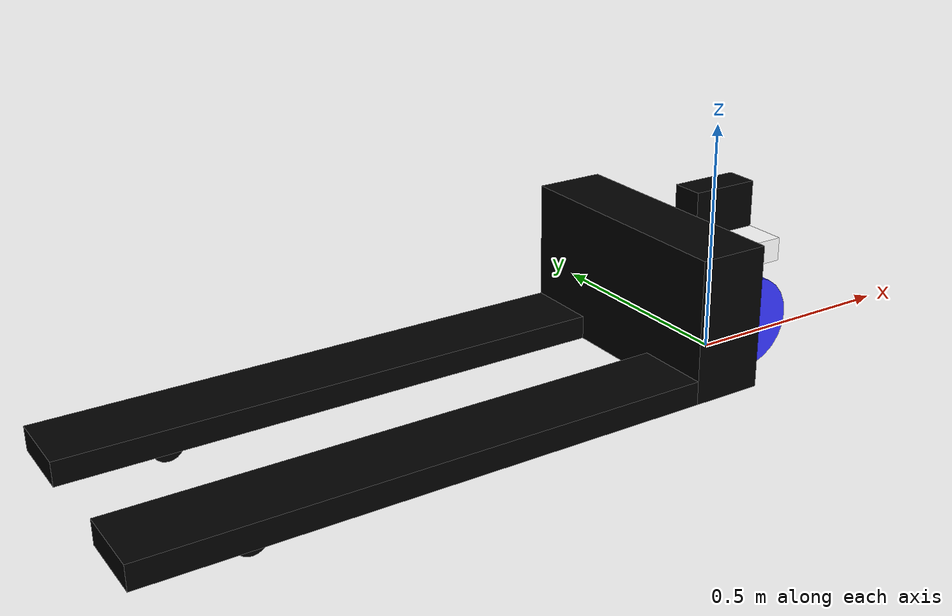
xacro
<?xml version="1.0"?>
<robot xmlns:xacro="http://www.ros.org/wiki/xacro">

  <xacro:include filename="inertial_macros.xacro"/>

  <!-- Materials -->
  <material name="white">
    <color rgba="1 1 1 1" />
  </material>
  <material name="orange">
    <color rgba="1 0.3 0.1 1"/>
  </material>
  <material name="blue">
    <color rgba="0.2 0.2 1 1"/>
  </material>
  <material name="black">
    <color rgba="0 0 0 1"/>
  </material>

  <!-- Base Link -->
  <link name="base_link"/>

  <!-- Base Footprint -->
  <joint name="base_footprint_joint" type="fixed">
    <parent link="base_link"/>
    <child link="base_footprint"/>
    <origin xyz="0 0 0" rpy="0 0 0"/>
  </joint>
  <link name="base_footprint"/>

  <!-- Base Plate -->
  <joint name="base_plate_joint" type="fixed">
    <parent link="base_link"/>
    <child link="base_plate"/>
    <origin xyz="0 0 0.25"/>
  </joint>
  <link name="base_plate">
    <visual>
      <origin xyz="0 0 0"/>
      <geometry>
        <box size="0.15 0.25 0.05"/>
      </geometry>
      <material name="white"/>
    </visual>
    <collision>
      <origin xyz="0 0 0"/>
      <geometry>
        <box size="0.15 0.25 0.05"/>
      </geometry>
    </collision>
    <xacro:inertial_box mass="2" x="0.15" y="0.25" z="0.05">
      <origin xyz="0 0 0" rpy="0 0 0"/>
    </xacro:inertial_box>
  </link>

  <!-- Steering Shaft -->
  <joint name="steering_shaft_joint" type="revolute">
    <parent link="base_plate"/>
    <child link="steering_shaft"/>
    <origin xyz="0 0 -0.025" rpy="0 0 0"/>
    <axis xyz="0 0 1"/>
    <dynamics damping="1.1" friction="0.5"/>
    <limit lower="${-pi/2}" upper="${pi/2}" effort="1000" velocity="${2*pi}"/>
  </joint>
  <link name="steering_shaft">
    <visual>
      <origin xyz="0 0 -0.0625"/>
      <geometry>
        <cylinder radius="0.025" length="0.125"/>
      </geometry>
      <material name="blue"/>
    </visual>
    <xacro:inertial_cylinder mass="0.5" length="0.125" radius="0.025">
      <origin xyz="0 0 0" rpy="0 0 0"/>
    </xacro:inertial_cylinder>
  </link>

  <!-- Steering Wheel Right -->
  <joint name="steering_wheel_right_joint" type="continuous">
    <parent link="steering_shaft"/>
    <child link="steering_wheel_right"/>
    <!-- Switched X origin and flipped Y origin -->
    <origin xyz="0 -0.11 -0.125" rpy="${pi/2} 0 0"/>
    <axis xyz="0 0 -1"/>
    <dynamics damping="0.01" friction="0.01"/>
  </joint>
  <link name="steering_wheel_right">
    <visual>
      <geometry>
        <cylinder radius="0.1" length="0.04"/>
      </geometry>
      <material name="blue"/>
    </visual>
    <collision>
      <geometry>
        <sphere radius="0.1"/>
      </geometry>
    </collision>
    <xacro:inertial_cylinder mass="1.5" length="0.04" radius="0.1">
      <origin xyz="0 0 0" rpy="0 0 0"/>
    </xacro:inertial_cylinder>
  </link>

  <!-- Steering Wheel Left -->
  <joint name="steering_wheel_left_joint" type="continuous">
    <parent link="steering_shaft"/>
    <child link="steering_wheel_left"/>
    <!-- Switched X origin and flipped Y origin -->
    <origin xyz="0 0.11 -0.125" rpy="${pi/2} 0 0"/>
    <axis xyz="0 0 -1"/>
    <dynamics damping="0.01" friction="0.01"/>
  </joint>
  <link name="steering_wheel_left">
    <visual>
      <geometry>
        <cylinder radius="0.1" length="0.04"/>
      </geometry>
      <material name="blue"/>
    </visual>
    <collision>
      <geometry>
        <sphere radius="0.1"/>
      </geometry>
    </collision>
    <xacro:inertial_cylinder mass="1.5" length="0.04" radius="0.1">
      <origin xyz="0 0 0" rpy="0 0 0"/>
    </xacro:inertial_cylinder>
  </link>

  <!-- Linear Actuator -->
  <joint name="linear_actuator_joint" type="prismatic">
    <parent link="base_plate"/>
    <child link="linear_actuator"/>
    <origin xyz="0 0 0.025"/>
    <axis xyz="0 0 1"/>
    <limit lower="0.0" upper="0.12" effort="1000.0" velocity="0.1"/>
    <dynamics damping="0.01" friction="0.01"/>
  </joint>
  <link name="linear_actuator">
    <visual>
      <origin xyz="0 0 0.05"/>
      <geometry>
        <box size="0.15 0.07 0.1"/>
      </geometry>
      <material name="black"/>
    </visual>
    <collision>
      <origin xyz="0 0 0.05"/>
      <geometry>
        <box size="0.15 0.07 0.1"/>
      </geometry>
    </collision>
    <xacro:inertial_box mass="2" x="0.15" y="0.07" z="0.1">
      <origin xyz="0 0 0.05" rpy="0 0 0"/>
    </xacro:inertial_box>
  </link>

  <!-- Frame Box -->
  <joint name="frame_box_joint" type="fixed">
    <parent link="linear_actuator"/>
    <child link="frame_box"/>
    <!-- Switched X origin and flipped Y origin -->
    <origin xyz="-0.18 0 -0.085" rpy="0 0 0"/>
    <dynamics damping="1.0" friction="1.0"/>
  </joint>
  <link name="frame_box">
    <visual>
      <geometry>
        <box size="0.15 0.54 0.3"/>
      </geometry>
      <material name="black"/>
    </visual>
    <collision>
      <geometry>
        <box size="0.15 0.54 0.3"/>
      </geometry>
    </collision>
    <xacro:inertial_box mass="20" x="0.15" y="0.54" z="0.3">
      <origin xyz="0 0 0" rpy="0 0 0"/>
    </xacro:inertial_box>
  </link>

  <!-- Left Fork -->
  <joint name="left_fork_joint" type="fixed">
    <parent link="frame_box"/>
    <child link="left_fork"/>
    <!-- Switched X origin and flipped Y origin -->
    <origin xyz="-0.075 0.19 -0.125" rpy="0 0 0"/>
  </joint>
  <link name="left_fork">
    <visual>
      <!-- Switched X origin -->
      <origin xyz="-0.57 0 0"/>
      <geometry>
        <box size="1.14 0.16 0.05"/>
      </geometry>
      <material name="black"/>
    </visual>
    <collision>
      <!-- Switched X origin -->
      <origin xyz="-0.57 0 0"/>
      <geometry>
        <box size="1.14 0.16 0.05"/>
      </geometry>
    </collision>
    <xacro:inertial_box mass="10" x="1.14" y="0.16" z="0.05">
      <origin xyz="-0.57 0 0" rpy="0 0 0"/>
    </xacro:inertial_box>
  </link>

  <!-- Right Fork -->
  <joint name="right_fork_joint" type="fixed">
    <parent link="frame_box"/>
    <child link="right_fork"/>
    <!-- Switched X origin and flipped Y origin -->
    <origin xyz="-0.075 -0.19 -0.125" rpy="0 0 0"/>
  </joint>
  <link name="right_fork">
    <visual>
      <!-- Switched X origin -->
      <origin xyz="-0.57 0 0"/>
      <geometry>
        <box size="1.14 0.16 0.05"/>
      </geometry>
      <material name="black"/>
    </visual>
    <collision>
      <!-- Switched X origin -->
      <origin xyz="-0.57 0 0"/>
      <geometry>
        <box size="1.14 0.16 0.05"/>
      </geometry>
    </collision>
    <xacro:inertial_box mass="10" x="1.14" y="0.16" z="0.05">
      <origin xyz="-0.57 0 0" rpy="0 0 0"/>
    </xacro:inertial_box>
  </link>

  <!-- Fork Wheel Left -->
  <joint name="fork_wheel_left_joint" type="continuous">
    <parent link="base_plate"/>
    <child link="fork_wheel_left"/>
    <!-- Switched X origin and flipped Y origin -->
    <origin xyz="-1.17 0.19 -0.2175" rpy="${pi/2} 0 0"/>
    <axis xyz="0 0 1"/>
    <dynamics damping="0.1" friction="0.1"/>
  </joint>
  <link name="fork_wheel_left">
    <visual>
      <geometry>
        <cylinder radius="0.0325" length="0.07"/>
      </geometry>
      <material name="black"/>
    </visual>
    <collision>
      <geometry>
        <sphere radius="0.0325"/>
      </geometry>
    </collision>
    <xacro:inertial_cylinder mass="0.3" length="0.07" radius="0.0325">
      <origin xyz="0 0 0" rpy="0 0 0"/>
    </xacro:inertial_cylinder>
  </link>

  <!-- Fork Wheel Right -->
  <joint name="fork_wheel_right_joint" type="continuous">
    <parent link="base_plate"/>
    <child link="fork_wheel_right"/>
    <!-- Switched X origin and flipped Y origin -->
    <origin xyz="-1.17 -0.19 -0.2175" rpy="${pi/2} 0 0"/>
    <axis xyz="0 0 1"/>
    <dynamics damping="0.1" friction="0.1"/>
  </joint>
  <link name="fork_wheel_right">
    <visual>
      <geometry>
        <cylinder radius="0.0325" length="0.07"/>
      </geometry>
      <material name="black"/>
    </visual>
    <collision>
      <geometry>
        <sphere radius="0.0325"/>
      </geometry>
    </collision>
    <xacro:inertial_cylinder mass="0.3" length="0.07" radius="0.0325">
      <origin xyz="0 0 0" rpy="0 0 0"/>
    </xacro:inertial_cylinder>
  </link>

  <!-- Gazebo Material and Friction Parameters -->
  <gazebo reference="steering_wheel_right">
    <material>Gazebo/Blue</material>
    <mu1 value="0.9"/>
    <mu2 value="0.9"/>
  </gazebo>
  <gazebo reference="steering_wheel_left">
    <material>Gazebo/Red</material>
    <mu1 value="0.9"/>
    <mu2 value="0.9"/>
  </gazebo>
  <gazebo reference="fork_wheel_left">
    <material>Gazebo/Red</material>
    <mu1 value="0.9"/>
    <mu2 value="1.0"/>
  </gazebo>
  <gazebo reference="fork_wheel_right">
    <material>Gazebo/Blue</material>
    <mu1 value="0.9"/>
    <mu2 value="1.0"/>
  </gazebo>
  <gazebo reference="frame_box">
    <material>Gazebo/Red</material>
  </gazebo>
  <gazebo>
    <plugin name="gazebo_ros_joint_state_publisher"
        filename="libgazebo_ros_joint_state_publisher.so">
        <update_rate>100</update_rate>
        <joint_name>steering_wheel_right_joint</joint_name>
        <joint_name>steering_wheel_left_joint</joint_name>
        <joint_name>steering_shaft_joint</joint_name>
        <joint_name>fork_wheel_right_joint</joint_name>
        <joint_name>fork_wheel_left_joint</joint_name>
        <joint_name>linear_actuator_joint</joint_name>
    </plugin>
  </gazebo>
  <!-- Left Wheel Transmission -->
    <transmission name="steering_wheel_left_transmission">
        <type>transmission_interface/SimpleTransmission</type>
        <joint name="steering_wheel_left_joint">
            <hardwareInterface>hardware_interface/EffortJointInterface</hardwareInterface>
        </joint>
        <actuator name="steering_wheel_left_motor">
            <hardwareInterface>hardware_interface/EffortJointInterface</hardwareInterface>
            <mechanicalReduction>1</mechanicalReduction>
        </actuator>
    </transmission>

    <!-- Right Wheel Transmission -->
    <transmission name="steering_wheel_right_transmission">
        <type>transmission_interface/SimpleTransmission</type>
        <joint name="steering_wheel_right_joint">
            <hardwareInterface>hardware_interface/EffortJointInterface</hardwareInterface>
        </joint>
        <actuator name="steering_wheel_right_motor">
            <hardwareInterface>hardware_interface/EffortJointInterface</hardwareInterface>
            <mechanicalReduction>1</mechanicalReduction>
        </actuator>
    </transmission>

  <!-- Transmissions -->

</robot>
